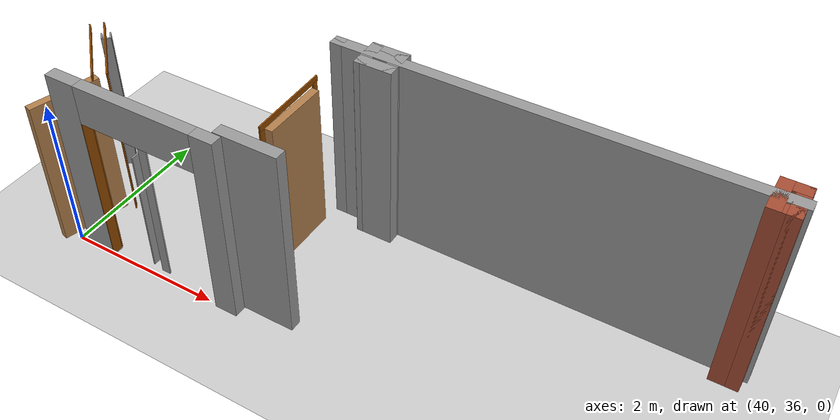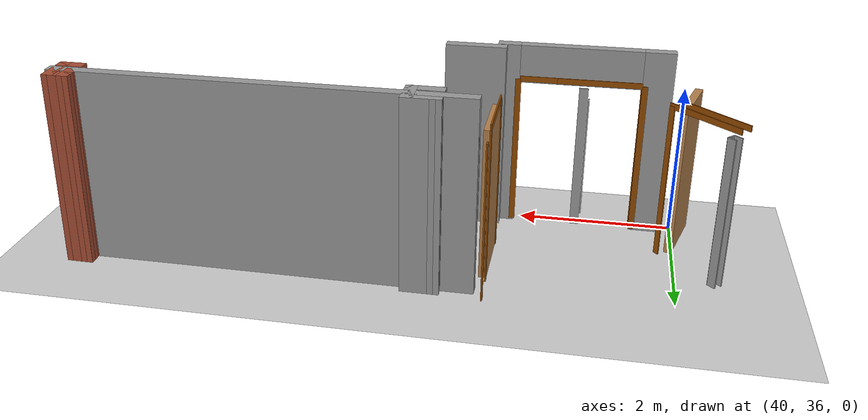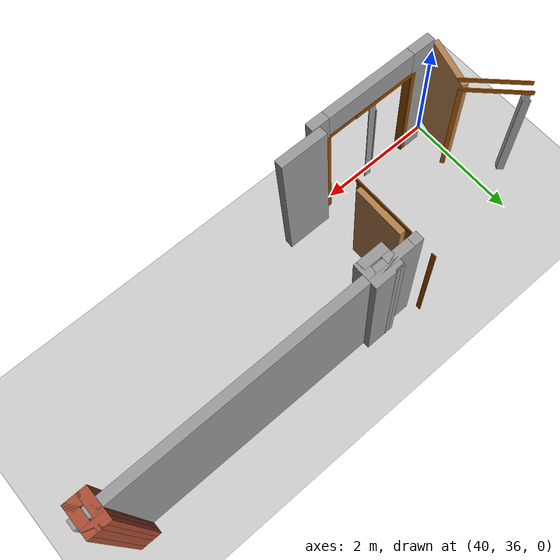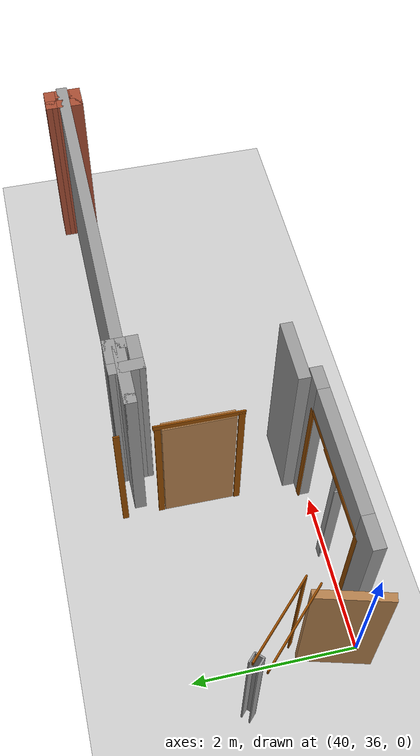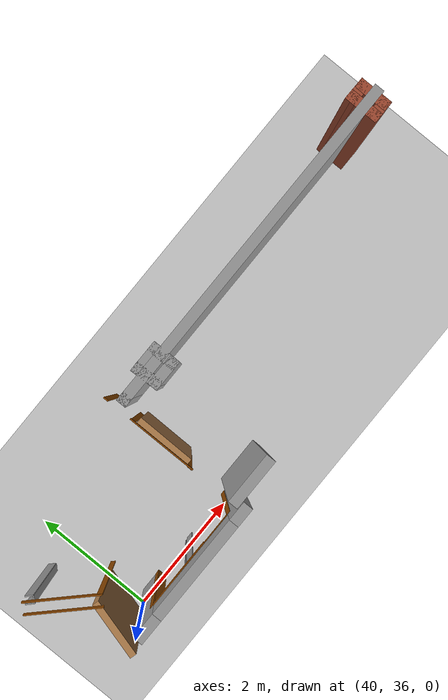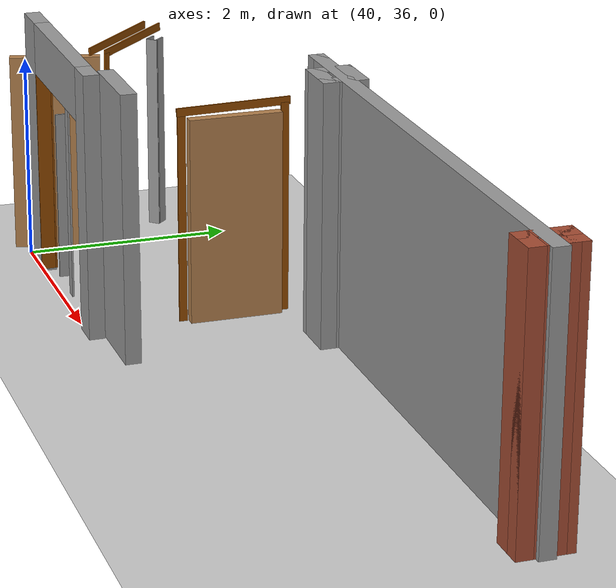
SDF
<sdf version="1.6">
 <world name="default">
  <model name="ground_plane">
   <static>1</static>
   <link name="link">
    <collision name="collision">
     <geometry><plane><normal>0 0 1</normal><size>100 100</size></plane></geometry>
     <surface><friction><ode><mu>100</mu><mu2>50</mu2></ode></friction></surface>
    </collision>
    <visual name="visual">
     <cast_shadows>0</cast_shadows>
     <geometry><plane><normal>0 0 1</normal><size>100 100</size></plane></geometry>
     <material>
      <script><uri>file://media/materials/scripts/gazebo.material</uri><name>Gazebo/Grey</name></script>
     </material>
    </visual>
   </link>
  </model>
  <model name="CVSSP">
   <pose>23.8714 24.094 0 0 -0 0</pose>
   <link name="Wall_228">
    <pose>17.4069 11.9566 0 0 -0 0</pose>
    <visual name="Wall_228_Visual_0">
     <pose>-0.929285 0 1.25 0 -0 0</pose>
     <geometry><box><size>0.391429 0.15 2.5</size></box></geometry>
     <material>
      <script><uri>file://media/materials/scripts/gazebo.material</uri><name>Gazebo/Grey</name></script>
      <ambient>0.588235 0.588235 0.588235 1</ambient>
     </material>
    </visual>
    <collision name="Wall_228_Collision_0">
     <geometry><box><size>0.391429 0.15 2.5</size></box></geometry>
     <pose>-0.929285 0 1.25 0 -0 0</pose>
    </collision>
    <visual name="Wall_228_Visual_1">
     <pose>0.97634 0 1.25 0 -0 0</pose>
     <geometry><box><size>0.297321 0.15 2.5</size></box></geometry>
     <material>
      <script><uri>file://media/materials/scripts/gazebo.material</uri><name>Gazebo/Grey</name></script>
      <ambient>0.588235 0.588235 0.588235 1</ambient>
     </material>
    </visual>
    <collision name="Wall_228_Collision_1">
     <geometry><box><size>0.297321 0.15 2.5</size></box></geometry>
     <pose>0.97634 0 1.25 0 -0 0</pose>
    </collision>
    <visual name="Wall_228_Visual_2">
     <pose>0.047054 0 2.25 0 -0 0</pose>
     <geometry><box><size>1.56125 0.15 0.5</size></box></geometry>
     <material>
      <script><uri>file://media/materials/scripts/gazebo.material</uri><name>Gazebo/Grey</name></script>
      <ambient>0.588235 0.588235 0.588235 1</ambient>
     </material>
    </visual>
    <collision name="Wall_228_Collision_2">
     <geometry><box><size>1.56125 0.15 0.5</size></box></geometry>
     <pose>0.047054 0 2.25 0 -0 0</pose>
    </collision>
   </link>
   <link name="Wall_233">
    <collision name="Wall_233_Collision">
     <geometry><box><size>0.784783 0.15 2.5</size></box></geometry>
     <pose>0 0 1.25 0 -0 0</pose>
    </collision>
    <visual name="Wall_233_Visual">
     <pose>0 0 1.25 0 -0 0</pose>
     <geometry><box><size>0.784783 0.15 2.5</size></box></geometry>
     <material>
      <script><uri>file://media/materials/scripts/gazebo.material</uri><name>Gazebo/Grey</name></script>
      <ambient>1 1 1 1</ambient>
     </material>
    </visual>
    <pose>18.7997 12.116 0 0 -0 3.14159</pose>
   </link>
   <link name="Wall_533">
    <collision name="Wall_533_Collision">
     <geometry><box><size>5.25 0.15 2.5</size></box></geometry>
     <pose>0 0 1.25 0 -0 0</pose>
    </collision>
    <visual name="Wall_533_Visual">
     <pose>0 0 1.25 0 -0 0</pose>
     <geometry><box><size>5.25 0.15 2.5</size></box></geometry>
     <material>
      <script><uri>file://media/materials/scripts/gazebo.material</uri><name>Gazebo/Grey</name></script>
      <ambient>0.588235 0.588235 0.588235 1</ambient>
     </material>
    </visual>
    <pose>21.1286 14.0544 0 0 -0 3.14159</pose>
   </link>
   <link name="Wall_534">
    <collision name="Wall_534_Collision">
     <geometry><box><size>0.15 0.15 2.5</size></box></geometry>
     <pose>0 0 1.25 0 -0 0</pose>
    </collision>
    <visual name="Wall_534_Visual">
     <pose>0 0 1.25 0 -0 0</pose>
     <geometry><box><size>0.15 0.15 2.5</size></box></geometry>
     <material>
      <script><uri>file://media/materials/scripts/gazebo.material</uri><name>Gazebo/Grey</name></script>
      <ambient>1 1 1 1</ambient>
     </material>
    </visual>
    <pose>18.5786 14.0544 0 0 -0 0</pose>
   </link>
   <link name="Wall_535">
    <collision name="Wall_535_Collision">
     <geometry><box><size>0.15 0.15 2.5</size></box></geometry>
     <pose>0 0 1.25 0 -0 0</pose>
    </collision>
    <visual name="Wall_535_Visual">
     <pose>0 0 1.25 0 -0 0</pose>
     <geometry><box><size>0.15 0.15 2.5</size></box></geometry>
     <material>
      <script><uri>file://media/materials/scripts/gazebo.material</uri><name>Gazebo/Grey</name></script>
      <ambient>1 1 1 1</ambient>
     </material>
    </visual>
    <pose>18.5786 14.0544 0 0 -0 0</pose>
   </link>
   <link name="Wall_673">
    <collision name="Wall_673_Collision">
     <geometry><box><size>0.486902 0.15 2.5</size></box></geometry>
     <pose>0 0 1.25 0 -0 0</pose>
    </collision>
    <visual name="Wall_673_Visual">
     <pose>0 0 1.25 0 -0 0</pose>
     <geometry><box><size>0.486902 0.15 2.5</size></box></geometry>
     <material>
      <script><uri>file://media/materials/scripts/gazebo.material</uri><name>Gazebo/Grey</name></script>
      <ambient>1 1 1 1</ambient>
     </material>
    </visual>
    <pose>19.1589 14.1574 0 0 -0 0</pose>
   </link>
   <link name="Wall_674">
    <collision name="Wall_674_Collision">
     <geometry><box><size>0.426562 0.15 2.5</size></box></geometry>
     <pose>0 0 1.25 0 -0 0</pose>
    </collision>
    <visual name="Wall_674_Visual">
     <pose>0 0 1.25 0 -0 0</pose>
     <geometry><box><size>0.426562 0.15 2.5</size></box></geometry>
     <material>
      <script><uri>file://media/materials/scripts/gazebo.material</uri><name>Gazebo/Grey</name></script>
      <ambient>1 1 1 1</ambient>
     </material>
    </visual>
    <pose>19.3273 14.0191 0 0 0 -1.5708</pose>
   </link>
   <link name="Wall_675">
    <collision name="Wall_675_Collision">
     <geometry><box><size>0.476846 0.15 2.5</size></box></geometry>
     <pose>0 0 1.25 0 -0 0</pose>
    </collision>
    <visual name="Wall_675_Visual">
     <pose>0 0 1.25 0 -0 0</pose>
     <geometry><box><size>0.476846 0.15 2.5</size></box></geometry>
     <material>
      <script><uri>file://media/materials/scripts/gazebo.material</uri><name>Gazebo/Grey</name></script>
      <ambient>1 1 1 1</ambient>
     </material>
    </visual>
    <pose>19.1639 13.8808 0 0 -0 3.14159</pose>
   </link>
   <link name="Wall_676">
    <collision name="Wall_676_Collision">
     <geometry><box><size>0.426744 0.15 2.5</size></box></geometry>
     <pose>0 0 1.25 0 -0 0</pose>
    </collision>
    <visual name="Wall_676_Visual">
     <pose>0 0 1.25 0 -0 0</pose>
     <geometry><box><size>0.426744 0.15 2.5</size></box></geometry>
     <material>
      <script><uri>file://media/materials/scripts/gazebo.material</uri><name>Gazebo/Grey</name></script>
      <ambient>1 1 1 1</ambient>
     </material>
    </visual>
    <pose>18.9954 14.0191 0 0 -0 1.60714</pose>
   </link>
   <link name="Wall_678">
    <collision name="Wall_678_Collision">
     <geometry><box><size>0.341089 0.15 2.5</size></box></geometry>
     <pose>0 0 1.25 0 -0 0</pose>
    </collision>
    <visual name="Wall_678_Visual">
     <pose>0 0 1.25 0 -0 0</pose>
     <geometry><box><size>0.341089 0.15 2.5</size></box></geometry>
     <material>
      <script><uri>file://media/materials/scripts/gazebo.material</uri><name>Gazebo/Bricks</name></script>
      <ambient>1 1 1 1</ambient>
     </material>
    </visual>
    <pose>23.5361 14.2369 0 0 -0 3.13119</pose>
   </link>
   <link name="Wall_679">
    <collision name="Wall_679_Collision">
     <geometry><box><size>0.501988 0.15 2.5</size></box></geometry>
     <pose>0 0 1.25 0 -0 0</pose>
    </collision>
    <visual name="Wall_679_Visual">
     <pose>0 0 1.25 0 -0 0</pose>
     <geometry><box><size>0.501988 0.15 2.5</size></box></geometry>
     <material>
      <script><uri>file://media/materials/scripts/gazebo.material</uri><name>Gazebo/Bricks</name></script>
      <ambient>1 1 1 1</ambient>
     </material>
    </visual>
    <pose>23.4405 14.0619 0 0 0 -1.5708</pose>
   </link>
   <link name="Wall_680">
    <collision name="Wall_680_Collision">
     <geometry><box><size>0.341145 0.15 2.5</size></box></geometry>
     <pose>0 0 1.25 0 -0 0</pose>
    </collision>
    <visual name="Wall_680_Visual">
     <pose>0 0 1.25 0 -0 0</pose>
     <geometry><box><size>0.341145 0.15 2.5</size></box></geometry>
     <material>
      <script><uri>file://media/materials/scripts/gazebo.material</uri><name>Gazebo/Bricks</name></script>
      <ambient>1 1 1 1</ambient>
     </material>
    </visual>
    <pose>23.5361 13.8859 0 0 -0 0</pose>
   </link>
   <link name="Wall_681">
    <collision name="Wall_681_Collision">
     <geometry><box><size>0.5 0.15 2.5</size></box></geometry>
     <pose>0 0 1.25 0 -0 0</pose>
    </collision>
    <visual name="Wall_681_Visual">
     <pose>0 0 1.25 0 -0 0</pose>
     <geometry><box><size>0.5 0.15 2.5</size></box></geometry>
     <material>
      <script><uri>file://media/materials/scripts/gazebo.material</uri><name>Gazebo/Bricks</name></script>
      <ambient>1 1 1 1</ambient>
     </material>
    </visual>
    <pose>23.6316 14.0609 0 0 -0 1.5708</pose>
   </link>
   <static>1</static>
  </model>
  <model name="basic_ply_door_corrected_clone_0_clone">
   <link name="link">
    <pose>-0 0 1.00385 0 -0 0</pose>
    <inertial>
     <mass>0.5167</mass>
     <inertia>
      <ixx>0.00086117</ixx>
      <ixy>0</ixy>
      <ixz>0</ixz>
      <iyy>0.00086117</iyy>
      <iyz>0</iyz>
      <izz>0.00086117</izz>
     </inertia>
    </inertial>
    <gravity>0</gravity>
    <visual name="visual">
     <geometry><box><size>0.88 0.1 1.96</size></box></geometry>
     <material>
      <script><uri>file://media/materials/scripts/gazebo.material</uri><name>Gazebo/Wood</name></script>
      <shader type="pixel"><normal_map>__default__</normal_map></shader>
      <ambient>1 1 1 1</ambient>
      <diffuse>1 1 1 1</diffuse>
      <specular>0.2 0.2 0.2 1</specular>
      <emissive>0 0 0 1</emissive>
     </material>
    </visual>
    <collision name="collision">
     <geometry><box><size>0.88 0.1 1.96</size></box></geometry>
     <surface>
      <friction>
       <ode><mu>1</mu><mu2>1</mu2><fdir1>0 0 0</fdir1><slip1>0</slip1><slip2>0</slip2></ode>
       <torsional>
        <coefficient>1</coefficient>
        <patch_radius>0</patch_radius>
        <surface_radius>0.01</surface_radius>
        <use_patch_radius>0</use_patch_radius>
        <ode><slip>0</slip></ode>
       </torsional>
      </friction>
      <bounce><restitution_coefficient>0</restitution_coefficient><threshold>1e+06</threshold></bounce>
      <contact>
       <collide_without_contact>0</collide_without_contact>
       <collide_without_contact_bitmask>1</collide_without_contact_bitmask>
       <collide_bitmask>1</collide_bitmask>
       <ode>
        <soft_cfm>0</soft_cfm>
        <soft_erp>0.2</soft_erp>
        <kp>100000</kp>
        <kd>100</kd>
        <max_vel>100</max_vel>
        <min_depth>0.001</min_depth>
       </ode>
       <bullet>
        <split_impulse>1</split_impulse>
        <split_impulse_penetration_threshold>-0.01</split_impulse_penetration_threshold>
        <soft_cfm>0</soft_cfm>
        <soft_erp>0.2</soft_erp>
        <kp>100000</kp>
        <kd>100</kd>
       </bullet>
      </contact>
     </surface>
    </collision>
   </link>
   <static>1</static>
   <pose>42.3144 37.3998 -0.00101 0 -0 1.56379</pose>
  </model>
  <model name="metal_hinge">
   <link name="link">
    <inertial>
     <mass>1</mass>
     <inertia>
      <ixx>0.166667</ixx>
      <ixy>0</ixy>
      <ixz>0</ixz>
      <iyy>0.166667</iyy>
      <iyz>0</iyz>
      <izz>0.166667</izz>
     </inertia>
    </inertial>
    <visual name="visual">
     <geometry><box><size>0.018685 0.118108 1.60983</size></box></geometry>
     <material>
      <script><name>Gazebo/Grey</name><uri>file://media/materials/scripts/gazebo.material</uri></script>
      <shader type="pixel"/>
     </material>
    </visual>
    <collision name="collision">
     <geometry><box><size>0.018685 0.118108 1.60983</size></box></geometry>
     <surface>
      <friction>
       <ode><mu>1</mu><mu2>1</mu2><fdir1>0 0 0</fdir1><slip1>0</slip1><slip2>0</slip2></ode>
       <torsional>
        <coefficient>1</coefficient>
        <patch_radius>0</patch_radius>
        <surface_radius>0</surface_radius>
        <use_patch_radius>1</use_patch_radius>
        <ode><slip>0</slip></ode>
       </torsional>
      </friction>
      <bounce><restitution_coefficient>0</restitution_coefficient><threshold>1e+06</threshold></bounce>
      <contact>
       <collide_without_contact>0</collide_without_contact>
       <collide_without_contact_bitmask>1</collide_without_contact_bitmask>
       <collide_bitmask>1</collide_bitmask>
       <ode>
        <soft_cfm>0</soft_cfm>
        <soft_erp>0.2</soft_erp>
        <kp>1e+13</kp>
        <kd>1</kd>
        <max_vel>0.01</max_vel>
        <min_depth>0</min_depth>
       </ode>
       <bullet>
        <split_impulse>1</split_impulse>
        <split_impulse_penetration_threshold>-0.01</split_impulse_penetration_threshold>
        <soft_cfm>0</soft_cfm>
        <soft_erp>0.2</soft_erp>
        <kp>1e+13</kp>
        <kd>1</kd>
       </bullet>
      </contact>
     </surface>
    </collision>
   </link>
   <static>1</static>
   <pose>41.1991 36.0596 0.984523 0 -0 0</pose>
  </model>
  <model name="basic_ply_door_corrected_clone_0_clone_clone_1_clone">
   <link name="link">
    <pose>-0 0 1.00385 0 -0 0</pose>
    <inertial>
     <mass>0.5167</mass>
     <inertia>
      <ixx>0.00086117</ixx>
      <ixy>0</ixy>
      <ixz>0</ixz>
      <iyy>0.00086117</iyy>
      <iyz>0</iyz>
      <izz>0.00086117</izz>
     </inertia>
    </inertial>
    <gravity>0</gravity>
    <visual name="visual">
     <geometry><box><size>0.88 0.1 1.96</size></box></geometry>
     <material>
      <script><uri>file://media/materials/scripts/gazebo.material</uri><name>Gazebo/Wood</name></script>
      <shader type="pixel"><normal_map>__default__</normal_map></shader>
      <ambient>1 1 1 1</ambient>
      <diffuse>1 1 1 1</diffuse>
      <specular>0.2 0.2 0.2 1</specular>
      <emissive>0 0 0 1</emissive>
     </material>
    </visual>
    <collision name="collision">
     <geometry><box><size>0.88 0.1 1.96</size></box></geometry>
     <surface>
      <friction>
       <ode><mu>1</mu><mu2>1</mu2><fdir1>0 0 0</fdir1><slip1>0</slip1><slip2>0</slip2></ode>
       <torsional>
        <coefficient>1</coefficient>
        <patch_radius>0</patch_radius>
        <surface_radius>0.01</surface_radius>
        <use_patch_radius>0</use_patch_radius>
        <ode><slip>0</slip></ode>
       </torsional>
      </friction>
      <bounce><restitution_coefficient>0</restitution_coefficient><threshold>1e+06</threshold></bounce>
      <contact>
       <collide_without_contact>0</collide_without_contact>
       <collide_without_contact_bitmask>1</collide_without_contact_bitmask>
       <collide_bitmask>1</collide_bitmask>
       <ode>
        <soft_cfm>0</soft_cfm>
        <soft_erp>0.2</soft_erp>
        <kp>100000</kp>
        <kd>100</kd>
        <max_vel>100</max_vel>
        <min_depth>0.001</min_depth>
       </ode>
       <bullet>
        <split_impulse>1</split_impulse>
        <split_impulse_penetration_threshold>-0.01</split_impulse_penetration_threshold>
        <soft_cfm>0</soft_cfm>
        <soft_erp>0.2</soft_erp>
        <kp>100000</kp>
        <kd>100</kd>
       </bullet>
      </contact>
     </surface>
    </collision>
   </link>
   <static>1</static>
   <pose>39.9328 36.3122 -0.00101 0 0 -1.83483</pose>
  </model>
  <model name="metal_hinge_clone_0">
   <link name="link">
    <inertial>
     <mass>1</mass>
     <inertia>
      <ixx>0.166667</ixx>
      <ixy>0</ixy>
      <ixz>0</ixz>
      <iyy>0.166667</iyy>
      <iyz>0</iyz>
      <izz>0.166667</izz>
     </inertia>
    </inertial>
    <visual name="visual">
     <geometry><box><size>0.018685 0.118108 1.95261</size></box></geometry>
     <material>
      <script><name>Gazebo/Grey</name><uri>file://media/materials/scripts/gazebo.material</uri></script>
      <shader type="pixel"/>
     </material>
    </visual>
    <collision name="collision">
     <geometry><box><size>0.018685 0.118108 1.95261</size></box></geometry>
     <surface>
      <friction>
       <ode><mu>1</mu><mu2>1</mu2><fdir1>0 0 0</fdir1><slip1>0</slip1><slip2>0</slip2></ode>
       <torsional>
        <coefficient>1</coefficient>
        <patch_radius>0</patch_radius>
        <surface_radius>0</surface_radius>
        <use_patch_radius>1</use_patch_radius>
        <ode><slip>0</slip></ode>
       </torsional>
      </friction>
      <bounce><restitution_coefficient>0</restitution_coefficient><threshold>1e+06</threshold></bounce>
      <contact>
       <collide_without_contact>0</collide_without_contact>
       <collide_without_contact_bitmask>1</collide_without_contact_bitmask>
       <collide_bitmask>1</collide_bitmask>
       <ode>
        <soft_cfm>0</soft_cfm>
        <soft_erp>0.2</soft_erp>
        <kp>1e+13</kp>
        <kd>1</kd>
        <max_vel>0.01</max_vel>
        <min_depth>0</min_depth>
       </ode>
       <bullet>
        <split_impulse>1</split_impulse>
        <split_impulse_penetration_threshold>-0.01</split_impulse_penetration_threshold>
        <soft_cfm>0</soft_cfm>
        <soft_erp>0.2</soft_erp>
        <kp>1e+13</kp>
        <kd>1</kd>
       </bullet>
      </contact>
     </surface>
    </collision>
   </link>
   <static>1</static>
   <pose>39.5542 37.4047 0.981251 0 0 -0.77044</pose>
  </model>
  <model name="metal_hinge_clone_1">
   <link name="link">
    <inertial>
     <mass>1</mass>
     <inertia>
      <ixx>0.166667</ixx>
      <ixy>0</ixy>
      <ixz>0</ixz>
      <iyy>0.166667</iyy>
      <iyz>0</iyz>
      <izz>0.166667</izz>
     </inertia>
    </inertial>
    <visual name="visual">
     <geometry><box><size>0.018685 0.118108 1.95261</size></box></geometry>
     <material>
      <script><name>Gazebo/Grey</name><uri>file://media/materials/scripts/gazebo.material</uri></script>
      <shader type="pixel"/>
     </material>
    </visual>
    <collision name="collision">
     <geometry><box><size>0.018685 0.118108 1.95261</size></box></geometry>
     <surface>
      <friction>
       <ode><mu>1</mu><mu2>1</mu2><fdir1>0 0 0</fdir1><slip1>0</slip1><slip2>0</slip2></ode>
       <torsional>
        <coefficient>1</coefficient>
        <patch_radius>0</patch_radius>
        <surface_radius>0</surface_radius>
        <use_patch_radius>1</use_patch_radius>
        <ode><slip>0</slip></ode>
       </torsional>
      </friction>
      <bounce><restitution_coefficient>0</restitution_coefficient><threshold>1e+06</threshold></bounce>
      <contact>
       <collide_without_contact>0</collide_without_contact>
       <collide_without_contact_bitmask>1</collide_without_contact_bitmask>
       <collide_bitmask>1</collide_bitmask>
       <ode>
        <soft_cfm>0</soft_cfm>
        <soft_erp>0.2</soft_erp>
        <kp>1e+13</kp>
        <kd>1</kd>
        <max_vel>0.01</max_vel>
        <min_depth>0</min_depth>
       </ode>
       <bullet>
        <split_impulse>1</split_impulse>
        <split_impulse_penetration_threshold>-0.01</split_impulse_penetration_threshold>
        <soft_cfm>0</soft_cfm>
        <soft_erp>0.2</soft_erp>
        <kp>1e+13</kp>
        <kd>1</kd>
       </bullet>
      </contact>
     </surface>
    </collision>
   </link>
   <static>1</static>
   <pose>39.5516 37.4866 0.984523 0 -0 0.79018</pose>
  </model>
  <model name="metal_hinge_clone_1_clone">
   <link name="link">
    <inertial>
     <mass>1</mass>
     <inertia>
      <ixx>0.166667</ixx>
      <ixy>0</ixy>
      <ixz>0</ixz>
      <iyy>0.166667</iyy>
      <iyz>0</iyz>
      <izz>0.166667</izz>
     </inertia>
    </inertial>
    <visual name="visual">
     <geometry><box><size>0.018685 0.118108 1.95261</size></box></geometry>
     <material>
      <script><name>Gazebo/Grey</name><uri>file://media/materials/scripts/gazebo.material</uri></script>
      <shader type="pixel"/>
     </material>
    </visual>
    <collision name="collision">
     <geometry><box><size>0.018685 0.118108 1.95261</size></box></geometry>
     <surface>
      <friction>
       <ode><mu>1</mu><mu2>1</mu2><fdir1>0 0 0</fdir1><slip1>0</slip1><slip2>0</slip2></ode>
       <torsional>
        <coefficient>1</coefficient>
        <patch_radius>0</patch_radius>
        <surface_radius>0</surface_radius>
        <use_patch_radius>1</use_patch_radius>
        <ode><slip>0</slip></ode>
       </torsional>
      </friction>
      <bounce><restitution_coefficient>0</restitution_coefficient><threshold>1e+06</threshold></bounce>
      <contact>
       <collide_without_contact>0</collide_without_contact>
       <collide_without_contact_bitmask>1</collide_without_contact_bitmask>
       <collide_bitmask>1</collide_bitmask>
       <ode>
        <soft_cfm>0</soft_cfm>
        <soft_erp>0.2</soft_erp>
        <kp>1e+13</kp>
        <kd>1</kd>
        <max_vel>0.01</max_vel>
        <min_depth>0</min_depth>
       </ode>
       <bullet>
        <split_impulse>1</split_impulse>
        <split_impulse_penetration_threshold>-0.01</split_impulse_penetration_threshold>
        <soft_cfm>0</soft_cfm>
        <soft_erp>0.2</soft_erp>
        <kp>1e+13</kp>
        <kd>1</kd>
       </bullet>
      </contact>
     </surface>
    </collision>
   </link>
   <static>1</static>
   <pose>39.4723 37.4144 0.984523 0 -0 0.79018</pose>
  </model>
  <model name="metal_hinge_clone_2">
   <link name="link">
    <inertial>
     <mass>1</mass>
     <inertia>
      <ixx>0.166667</ixx>
      <ixy>0</ixy>
      <ixz>0</ixz>
      <iyy>0.166667</iyy>
      <iyz>0</iyz>
      <izz>0.166667</izz>
     </inertia>
    </inertial>
    <visual name="visual">
     <geometry><box><size>0.018685 0.118108 1.95261</size></box></geometry>
     <material>
      <script><name>Gazebo/Grey</name><uri>file://media/materials/scripts/gazebo.material</uri></script>
      <shader type="pixel"/>
     </material>
    </visual>
    <collision name="collision">
     <geometry><box><size>0.018685 0.118108 1.95261</size></box></geometry>
     <surface>
      <friction>
       <ode><mu>1</mu><mu2>1</mu2><fdir1>0 0 0</fdir1><slip1>0</slip1><slip2>0</slip2></ode>
       <torsional>
        <coefficient>1</coefficient>
        <patch_radius>0</patch_radius>
        <surface_radius>0</surface_radius>
        <use_patch_radius>1</use_patch_radius>
        <ode><slip>0</slip></ode>
       </torsional>
      </friction>
      <bounce><restitution_coefficient>0</restitution_coefficient><threshold>1e+06</threshold></bounce>
      <contact>
       <collide_without_contact>0</collide_without_contact>
       <collide_without_contact_bitmask>1</collide_without_contact_bitmask>
       <collide_bitmask>1</collide_bitmask>
       <ode>
        <soft_cfm>0</soft_cfm>
        <soft_erp>0.2</soft_erp>
        <kp>1e+13</kp>
        <kd>1</kd>
        <max_vel>0.01</max_vel>
        <min_depth>0</min_depth>
       </ode>
       <bullet>
        <split_impulse>1</split_impulse>
        <split_impulse_penetration_threshold>-0.01</split_impulse_penetration_threshold>
        <soft_cfm>0</soft_cfm>
        <soft_erp>0.2</soft_erp>
        <kp>1e+13</kp>
        <kd>1</kd>
       </bullet>
      </contact>
     </surface>
    </collision>
   </link>
   <static>1</static>
   <pose>41.2718 36.0987 0.984523 0 0 -1.58649</pose>
  </model>
  <model name="oak_frame_0_clone_clone_7">
   <link name="link">
    <inertial>
     <mass>1</mass>
     <inertia>
      <ixx>0.166667</ixx>
      <ixy>0</ixy>
      <ixz>0</ixz>
      <iyy>0.166667</iyy>
      <iyz>0</iyz>
      <izz>0.166667</izz>
     </inertia>
    </inertial>
    <visual name="visual">
     <geometry><box><size>0.018685 0.076446 2.026</size></box></geometry>
     <material>
      <script><name>Gazebo/Grey</name><uri>file://media/materials/scripts/gazebo.material</uri></script>
      <shader type="pixel"><normal_map>__default__</normal_map></shader>
      <diffuse>0.58 0.29 0 0</diffuse>
      <ambient>0.58 0.29 0 1</ambient>
      <specular>0.01 0.01 0.01 1</specular>
      <emissive>0 0 0 1</emissive>
     </material>
    </visual>
    <collision name="collision">
     <geometry><box><size>0.018685 0.076446 2.026</size></box></geometry>
     <surface>
      <friction>
       <ode><mu>1</mu><mu2>1</mu2><fdir1>0 0 0</fdir1><slip1>0</slip1><slip2>0</slip2></ode>
       <torsional>
        <coefficient>1</coefficient>
        <patch_radius>0</patch_radius>
        <surface_radius>0</surface_radius>
        <use_patch_radius>1</use_patch_radius>
        <ode><slip>0</slip></ode>
       </torsional>
      </friction>
      <bounce><restitution_coefficient>0</restitution_coefficient><threshold>1e+06</threshold></bounce>
      <contact>
       <collide_without_contact>0</collide_without_contact>
       <collide_without_contact_bitmask>1</collide_without_contact_bitmask>
       <collide_bitmask>1</collide_bitmask>
       <ode>
        <soft_cfm>0</soft_cfm>
        <soft_erp>0.2</soft_erp>
        <kp>1e+13</kp>
        <kd>1</kd>
        <max_vel>0.01</max_vel>
        <min_depth>0</min_depth>
       </ode>
       <bullet>
        <split_impulse>1</split_impulse>
        <split_impulse_penetration_threshold>-0.01</split_impulse_penetration_threshold>
        <soft_cfm>0</soft_cfm>
        <soft_erp>0.2</soft_erp>
        <kp>1e+13</kp>
        <kd>1</kd>
       </bullet>
      </contact>
     </surface>
    </collision>
   </link>
   <static>1</static>
   <pose>42.261 36.9101 1.03242 0 -0 0</pose>
  </model>
  <model name="oak_frame_0_clone_clone_8">
   <link name="link">
    <inertial>
     <mass>1</mass>
     <inertia>
      <ixx>0.166667</ixx>
      <ixy>0</ixy>
      <ixz>0</ixz>
      <iyy>0.166667</iyy>
      <iyz>0</iyz>
      <izz>0.166667</izz>
     </inertia>
    </inertial>
    <visual name="visual">
     <geometry><box><size>0.018685 0.076446 2.026</size></box></geometry>
     <material>
      <script><name>Gazebo/Grey</name><uri>file://media/materials/scripts/gazebo.material</uri></script>
      <shader type="pixel"><normal_map>__default__</normal_map></shader>
      <diffuse>0.58 0.29 0 0</diffuse>
      <ambient>0.58 0.29 0 1</ambient>
      <specular>0.01 0.01 0.01 1</specular>
      <emissive>0 0 0 1</emissive>
     </material>
    </visual>
    <collision name="collision">
     <geometry><box><size>0.018685 0.076446 2.026</size></box></geometry>
     <surface>
      <friction>
       <ode><mu>1</mu><mu2>1</mu2><fdir1>0 0 0</fdir1><slip1>0</slip1><slip2>0</slip2></ode>
       <torsional>
        <coefficient>1</coefficient>
        <patch_radius>0</patch_radius>
        <surface_radius>0</surface_radius>
        <use_patch_radius>1</use_patch_radius>
        <ode><slip>0</slip></ode>
       </torsional>
      </friction>
      <bounce><restitution_coefficient>0</restitution_coefficient><threshold>1e+06</threshold></bounce>
      <contact>
       <collide_without_contact>0</collide_without_contact>
       <collide_without_contact_bitmask>1</collide_without_contact_bitmask>
       <collide_bitmask>1</collide_bitmask>
       <ode>
        <soft_cfm>0</soft_cfm>
        <soft_erp>0.2</soft_erp>
        <kp>1e+13</kp>
        <kd>1</kd>
        <max_vel>0.01</max_vel>
        <min_depth>0</min_depth>
       </ode>
       <bullet>
        <split_impulse>1</split_impulse>
        <split_impulse_penetration_threshold>-0.01</split_impulse_penetration_threshold>
        <soft_cfm>0</soft_cfm>
        <soft_erp>0.2</soft_erp>
        <kp>1e+13</kp>
        <kd>1</kd>
       </bullet>
      </contact>
     </surface>
    </collision>
   </link>
   <static>1</static>
   <pose>42.2734 37.8904 1.03242 0 -0 0</pose>
  </model>
  <model name="oak_frame_0_clone_clone_9">
   <link name="link">
    <inertial>
     <mass>1</mass>
     <inertia>
      <ixx>0.166667</ixx>
      <ixy>0</ixy>
      <ixz>0</ixz>
      <iyy>0.166667</iyy>
      <iyz>0</iyz>
      <izz>0.166667</izz>
     </inertia>
    </inertial>
    <visual name="visual">
     <geometry><box><size>0.018685 0.076446 2.026</size></box></geometry>
     <material>
      <script><name>Gazebo/Grey</name><uri>file://media/materials/scripts/gazebo.material</uri></script>
      <shader type="pixel"><normal_map>__default__</normal_map></shader>
      <diffuse>0.58 0.29 0 0</diffuse>
      <ambient>0.58 0.29 0 1</ambient>
      <specular>0.01 0.01 0.01 1</specular>
      <emissive>0 0 0 1</emissive>
     </material>
    </visual>
    <collision name="collision">
     <geometry><box><size>0.018685 0.076446 2.026</size></box></geometry>
     <surface>
      <friction>
       <ode><mu>1</mu><mu2>1</mu2><fdir1>0 0 0</fdir1><slip1>0</slip1><slip2>0</slip2></ode>
       <torsional>
        <coefficient>1</coefficient>
        <patch_radius>0</patch_radius>
        <surface_radius>0</surface_radius>
        <use_patch_radius>1</use_patch_radius>
        <ode><slip>0</slip></ode>
       </torsional>
      </friction>
      <bounce><restitution_coefficient>0</restitution_coefficient><threshold>1e+06</threshold></bounce>
      <contact>
       <collide_without_contact>0</collide_without_contact>
       <collide_without_contact_bitmask>1</collide_without_contact_bitmask>
       <collide_bitmask>1</collide_bitmask>
       <ode>
        <soft_cfm>0</soft_cfm>
        <soft_erp>0.2</soft_erp>
        <kp>1e+13</kp>
        <kd>1</kd>
        <max_vel>0.01</max_vel>
        <min_depth>0</min_depth>
       </ode>
       <bullet>
        <split_impulse>1</split_impulse>
        <split_impulse_penetration_threshold>-0.01</split_impulse_penetration_threshold>
        <soft_cfm>0</soft_cfm>
        <soft_erp>0.2</soft_erp>
        <kp>1e+13</kp>
        <kd>1</kd>
       </bullet>
      </contact>
     </surface>
    </collision>
   </link>
   <static>1</static>
   <pose>42.2621 38.3606 1.03242 0 -0 0</pose>
  </model>
  <model name="oak_frame_0_clone_0_clone_6">
   <link name="link">
    <inertial>
     <mass>1</mass>
     <inertia>
      <ixx>0.166667</ixx>
      <ixy>0</ixy>
      <ixz>0</ixz>
      <iyy>0.166667</iyy>
      <iyz>0</iyz>
      <izz>0.166667</izz>
     </inertia>
    </inertial>
    <visual name="visual">
     <geometry><box><size>0.018685 0.076446 1.08038</size></box></geometry>
     <material>
      <script><name>Gazebo/Grey</name><uri>file://media/materials/scripts/gazebo.material</uri></script>
      <shader type="pixel"><normal_map>__default__</normal_map></shader>
      <diffuse>0.58 0.29 0 0</diffuse>
      <ambient>0.58 0.29 0 1</ambient>
      <specular>0.01 0.01 0.01 1</specular>
      <emissive>0 0 0 1</emissive>
     </material>
    </visual>
    <collision name="collision">
     <geometry><box><size>0.018685 0.076446 1.08038</size></box></geometry>
     <surface>
      <friction>
       <ode><mu>1</mu><mu2>1</mu2><fdir1>0 0 0</fdir1><slip1>0</slip1><slip2>0</slip2></ode>
       <torsional>
        <coefficient>1</coefficient>
        <patch_radius>0</patch_radius>
        <surface_radius>0</surface_radius>
        <use_patch_radius>1</use_patch_radius>
        <ode><slip>0</slip></ode>
       </torsional>
      </friction>
      <bounce><restitution_coefficient>0</restitution_coefficient><threshold>1e+06</threshold></bounce>
      <contact>
       <collide_without_contact>0</collide_without_contact>
       <collide_without_contact_bitmask>1</collide_without_contact_bitmask>
       <collide_bitmask>1</collide_bitmask>
       <ode>
        <soft_cfm>0</soft_cfm>
        <soft_erp>0.2</soft_erp>
        <kp>1e+13</kp>
        <kd>1</kd>
        <max_vel>0.01</max_vel>
        <min_depth>0</min_depth>
       </ode>
       <bullet>
        <split_impulse>1</split_impulse>
        <split_impulse_penetration_threshold>-0.01</split_impulse_penetration_threshold>
        <soft_cfm>0</soft_cfm>
        <soft_erp>0.2</soft_erp>
        <kp>1e+13</kp>
        <kd>1</kd>
       </bullet>
      </contact>
     </surface>
    </collision>
   </link>
   <static>1</static>
   <pose>42.2706 37.4023 2.05002 -1.55236 0 0</pose>
  </model>
  <model name="oak_frame_0_clone_0_clone_8">
   <link name="link">
    <inertial>
     <mass>1</mass>
     <inertia>
      <ixx>0.166667</ixx>
      <ixy>0</ixy>
      <ixz>0</ixz>
      <iyy>0.166667</iyy>
      <iyz>0</iyz>
      <izz>0.166667</izz>
     </inertia>
    </inertial>
    <visual name="visual">
     <geometry><box><size>0.018685 0.076446 1.08038</size></box></geometry>
     <material>
      <script><name>Gazebo/Grey</name><uri>file://media/materials/scripts/gazebo.material</uri></script>
      <shader type="pixel"><normal_map>__default__</normal_map></shader>
      <diffuse>0.58 0.29 0 0</diffuse>
      <ambient>0.58 0.29 0 1</ambient>
      <specular>0.01 0.01 0.01 1</specular>
      <emissive>0 0 0 1</emissive>
     </material>
    </visual>
    <collision name="collision">
     <geometry><box><size>0.018685 0.076446 1.08038</size></box></geometry>
     <surface>
      <friction>
       <ode><mu>1</mu><mu2>1</mu2><fdir1>0 0 0</fdir1><slip1>0</slip1><slip2>0</slip2></ode>
       <torsional>
        <coefficient>1</coefficient>
        <patch_radius>0</patch_radius>
        <surface_radius>0</surface_radius>
        <use_patch_radius>1</use_patch_radius>
        <ode><slip>0</slip></ode>
       </torsional>
      </friction>
      <bounce><restitution_coefficient>0</restitution_coefficient><threshold>1e+06</threshold></bounce>
      <contact>
       <collide_without_contact>0</collide_without_contact>
       <collide_without_contact_bitmask>1</collide_without_contact_bitmask>
       <collide_bitmask>1</collide_bitmask>
       <ode>
        <soft_cfm>0</soft_cfm>
        <soft_erp>0.2</soft_erp>
        <kp>1e+13</kp>
        <kd>1</kd>
        <max_vel>0.01</max_vel>
        <min_depth>0</min_depth>
       </ode>
       <bullet>
        <split_impulse>1</split_impulse>
        <split_impulse_penetration_threshold>-0.01</split_impulse_penetration_threshold>
        <soft_cfm>0</soft_cfm>
        <soft_erp>0.2</soft_erp>
        <kp>1e+13</kp>
        <kd>1</kd>
       </bullet>
      </contact>
     </surface>
    </collision>
   </link>
   <static>1</static>
   <pose>41.077 36.1293 2.05002 -1.57076 0.018436 -1.56859</pose>
  </model>
  <model name="oak_frame_0_clone_0_clone_8_clone">
   <link name="link">
    <inertial>
     <mass>1</mass>
     <inertia>
      <ixx>0.166667</ixx>
      <ixy>0</ixy>
      <ixz>0</ixz>
      <iyy>0.166667</iyy>
      <iyz>0</iyz>
      <izz>0.166667</izz>
     </inertia>
    </inertial>
    <visual name="visual">
     <geometry><box><size>0.018685 0.076446 1.08038</size></box></geometry>
     <material>
      <script><name>Gazebo/Grey</name><uri>file://media/materials/scripts/gazebo.material</uri></script>
      <shader type="pixel"><normal_map>__default__</normal_map></shader>
      <diffuse>0.58 0.29 0 0</diffuse>
      <ambient>0.58 0.29 0 1</ambient>
      <specular>0.01 0.01 0.01 1</specular>
      <emissive>0 0 0 1</emissive>
     </material>
    </visual>
    <collision name="collision">
     <geometry><box><size>0.018685 0.076446 1.08038</size></box></geometry>
     <surface>
      <friction>
       <ode><mu>1</mu><mu2>1</mu2><fdir1>0 0 0</fdir1><slip1>0</slip1><slip2>0</slip2></ode>
       <torsional>
        <coefficient>1</coefficient>
        <patch_radius>0</patch_radius>
        <surface_radius>0</surface_radius>
        <use_patch_radius>1</use_patch_radius>
        <ode><slip>0</slip></ode>
       </torsional>
      </friction>
      <bounce><restitution_coefficient>0</restitution_coefficient><threshold>1e+06</threshold></bounce>
      <contact>
       <collide_without_contact>0</collide_without_contact>
       <collide_without_contact_bitmask>1</collide_without_contact_bitmask>
       <collide_bitmask>1</collide_bitmask>
       <ode>
        <soft_cfm>0</soft_cfm>
        <soft_erp>0.2</soft_erp>
        <kp>1e+13</kp>
        <kd>1</kd>
        <max_vel>0.01</max_vel>
        <min_depth>0</min_depth>
       </ode>
       <bullet>
        <split_impulse>1</split_impulse>
        <split_impulse_penetration_threshold>-0.01</split_impulse_penetration_threshold>
        <soft_cfm>0</soft_cfm>
        <soft_erp>0.2</soft_erp>
        <kp>1e+13</kp>
        <kd>1</kd>
       </bullet>
      </contact>
     </surface>
    </collision>
   </link>
   <static>1</static>
   <pose>41.5564 36.1208 2.05002 -1.57076 0.018436 -1.56859</pose>
  </model>
  <model name="oak_frame_0_clone_clone_7_clone">
   <link name="link">
    <inertial>
     <mass>1</mass>
     <inertia>
      <ixx>0.166667</ixx>
      <ixy>0</ixy>
      <ixz>0</ixz>
      <iyy>0.166667</iyy>
      <iyz>0</iyz>
      <izz>0.166667</izz>
     </inertia>
    </inertial>
    <visual name="visual">
     <geometry><box><size>0.018685 0.076446 2.026</size></box></geometry>
     <material>
      <script><name>Gazebo/Grey</name><uri>file://media/materials/scripts/gazebo.material</uri></script>
      <shader type="pixel"><normal_map>__default__</normal_map></shader>
      <diffuse>0.58 0.29 0 0</diffuse>
      <ambient>0.58 0.29 0 1</ambient>
      <specular>0.01 0.01 0.01 1</specular>
      <emissive>0 0 0 1</emissive>
     </material>
    </visual>
    <collision name="collision">
     <geometry><box><size>0.018685 0.076446 2.026</size></box></geometry>
     <surface>
      <friction>
       <ode><mu>1</mu><mu2>1</mu2><fdir1>0 0 0</fdir1><slip1>0</slip1><slip2>0</slip2></ode>
       <torsional>
        <coefficient>1</coefficient>
        <patch_radius>0</patch_radius>
        <surface_radius>0</surface_radius>
        <use_patch_radius>1</use_patch_radius>
        <ode><slip>0</slip></ode>
       </torsional>
      </friction>
      <bounce><restitution_coefficient>0</restitution_coefficient><threshold>1e+06</threshold></bounce>
      <contact>
       <collide_without_contact>0</collide_without_contact>
       <collide_without_contact_bitmask>1</collide_without_contact_bitmask>
       <collide_bitmask>1</collide_bitmask>
       <ode>
        <soft_cfm>0</soft_cfm>
        <soft_erp>0.2</soft_erp>
        <kp>1e+13</kp>
        <kd>1</kd>
        <max_vel>0.01</max_vel>
        <min_depth>0</min_depth>
       </ode>
       <bullet>
        <split_impulse>1</split_impulse>
        <split_impulse_penetration_threshold>-0.01</split_impulse_penetration_threshold>
        <soft_cfm>0</soft_cfm>
        <soft_erp>0.2</soft_erp>
        <kp>1e+13</kp>
        <kd>1</kd>
       </bullet>
      </contact>
     </surface>
    </collision>
   </link>
   <static>1</static>
   <pose>40.5079 36.1246 1.03242 0 -0 1.64784</pose>
  </model>
  <model name="oak_frame_0_clone_clone_7_clone_clone">
   <link name="link">
    <inertial>
     <mass>1</mass>
     <inertia>
      <ixx>0.166667</ixx>
      <ixy>0</ixy>
      <ixz>0</ixz>
      <iyy>0.166667</iyy>
      <iyz>0</iyz>
      <izz>0.166667</izz>
     </inertia>
    </inertial>
    <visual name="visual">
     <geometry><box><size>0.018685 0.076446 2.026</size></box></geometry>
     <material>
      <script><name>Gazebo/Grey</name><uri>file://media/materials/scripts/gazebo.material</uri></script>
      <shader type="pixel"><normal_map>__default__</normal_map></shader>
      <diffuse>0.58 0.29 0 0</diffuse>
      <ambient>0.58 0.29 0 1</ambient>
      <specular>0.01 0.01 0.01 1</specular>
      <emissive>0 0 0 1</emissive>
     </material>
    </visual>
    <collision name="collision">
     <geometry><box><size>0.018685 0.076446 2.026</size></box></geometry>
     <surface>
      <friction>
       <ode><mu>1</mu><mu2>1</mu2><fdir1>0 0 0</fdir1><slip1>0</slip1><slip2>0</slip2></ode>
       <torsional>
        <coefficient>1</coefficient>
        <patch_radius>0</patch_radius>
        <surface_radius>0</surface_radius>
        <use_patch_radius>1</use_patch_radius>
        <ode><slip>0</slip></ode>
       </torsional>
      </friction>
      <bounce><restitution_coefficient>0</restitution_coefficient><threshold>1e+06</threshold></bounce>
      <contact>
       <collide_without_contact>0</collide_without_contact>
       <collide_without_contact_bitmask>1</collide_without_contact_bitmask>
       <collide_bitmask>1</collide_bitmask>
       <ode>
        <soft_cfm>0</soft_cfm>
        <soft_erp>0.2</soft_erp>
        <kp>1e+13</kp>
        <kd>1</kd>
        <max_vel>0.01</max_vel>
        <min_depth>0</min_depth>
       </ode>
       <bullet>
        <split_impulse>1</split_impulse>
        <split_impulse_penetration_threshold>-0.01</split_impulse_penetration_threshold>
        <soft_cfm>0</soft_cfm>
        <soft_erp>0.2</soft_erp>
        <kp>1e+13</kp>
        <kd>1</kd>
       </bullet>
      </contact>
     </surface>
    </collision>
   </link>
   <static>1</static>
   <pose>42.1216 36.1221 1.03242 0 -0 1.64784</pose>
  </model>
  <model name="oak_frame_0_clone_clone_7_clone_clone_0_clone">
   <link name="link">
    <inertial>
     <mass>1</mass>
     <inertia>
      <ixx>0.166667</ixx>
      <ixy>0</ixy>
      <ixz>0</ixz>
      <iyy>0.166667</iyy>
      <iyz>0</iyz>
      <izz>0.166667</izz>
     </inertia>
    </inertial>
    <visual name="visual">
     <geometry><box><size>0.018685 0.076446 2.026</size></box></geometry>
     <material>
      <script><name>Gazebo/Grey</name><uri>file://media/materials/scripts/gazebo.material</uri></script>
      <shader type="pixel"><normal_map>__default__</normal_map></shader>
      <diffuse>0.58 0.29 0 0</diffuse>
      <ambient>0.58 0.29 0 1</ambient>
      <specular>0.01 0.01 0.01 1</specular>
      <emissive>0 0 0 1</emissive>
     </material>
    </visual>
    <collision name="collision">
     <geometry><box><size>0.018685 0.076446 2.026</size></box></geometry>
     <surface>
      <friction>
       <ode><mu>1</mu><mu2>1</mu2><fdir1>0 0 0</fdir1><slip1>0</slip1><slip2>0</slip2></ode>
       <torsional>
        <coefficient>1</coefficient>
        <patch_radius>0</patch_radius>
        <surface_radius>0</surface_radius>
        <use_patch_radius>1</use_patch_radius>
        <ode><slip>0</slip></ode>
       </torsional>
      </friction>
      <bounce><restitution_coefficient>0</restitution_coefficient><threshold>1e+06</threshold></bounce>
      <contact>
       <collide_without_contact>0</collide_without_contact>
       <collide_without_contact_bitmask>1</collide_without_contact_bitmask>
       <collide_bitmask>1</collide_bitmask>
       <ode>
        <soft_cfm>0</soft_cfm>
        <soft_erp>0.2</soft_erp>
        <kp>1e+13</kp>
        <kd>1</kd>
        <max_vel>0.01</max_vel>
        <min_depth>0</min_depth>
       </ode>
       <bullet>
        <split_impulse>1</split_impulse>
        <split_impulse_penetration_threshold>-0.01</split_impulse_penetration_threshold>
        <soft_cfm>0</soft_cfm>
        <soft_erp>0.2</soft_erp>
        <kp>1e+13</kp>
        <kd>1</kd>
       </bullet>
      </contact>
     </surface>
    </collision>
   </link>
   <static>1</static>
   <pose>40.1927 36.7686 1.03242 0 -0 0.782752</pose>
  </model>
  <model name="oak_frame_0_clone_0_clone_8_clone_0_clone_clone">
   <link name="link">
    <inertial>
     <mass>1</mass>
     <inertia>
      <ixx>0.166667</ixx>
      <ixy>0</ixy>
      <ixz>0</ixz>
      <iyy>0.166667</iyy>
      <iyz>0</iyz>
      <izz>0.166667</izz>
     </inertia>
    </inertial>
    <visual name="visual">
     <geometry><box><size>0.018685 0.076446 1.08038</size></box></geometry>
     <material>
      <script><name>Gazebo/Grey</name><uri>file://media/materials/scripts/gazebo.material</uri></script>
      <shader type="pixel"><normal_map>__default__</normal_map></shader>
      <diffuse>0.58 0.29 0 0</diffuse>
      <ambient>0.58 0.29 0 1</ambient>
      <specular>0.01 0.01 0.01 1</specular>
      <emissive>0 0 0 1</emissive>
     </material>
    </visual>
    <collision name="collision">
     <geometry><box><size>0.018685 0.076446 1.08038</size></box></geometry>
     <surface>
      <friction>
       <ode><mu>1</mu><mu2>1</mu2><fdir1>0 0 0</fdir1><slip1>0</slip1><slip2>0</slip2></ode>
       <torsional>
        <coefficient>1</coefficient>
        <patch_radius>0</patch_radius>
        <surface_radius>0</surface_radius>
        <use_patch_radius>1</use_patch_radius>
        <ode><slip>0</slip></ode>
       </torsional>
      </friction>
      <bounce><restitution_coefficient>0</restitution_coefficient><threshold>1e+06</threshold></bounce>
      <contact>
       <collide_without_contact>0</collide_without_contact>
       <collide_without_contact_bitmask>1</collide_without_contact_bitmask>
       <collide_bitmask>1</collide_bitmask>
       <ode>
        <soft_cfm>0</soft_cfm>
        <soft_erp>0.2</soft_erp>
        <kp>1e+13</kp>
        <kd>1</kd>
        <max_vel>0.01</max_vel>
        <min_depth>0</min_depth>
       </ode>
       <bullet>
        <split_impulse>1</split_impulse>
        <split_impulse_penetration_threshold>-0.01</split_impulse_penetration_threshold>
        <soft_cfm>0</soft_cfm>
        <soft_erp>0.2</soft_erp>
        <kp>1e+13</kp>
        <kd>1</kd>
       </bullet>
      </contact>
     </surface>
    </collision>
   </link>
   <static>1</static>
   <pose>39.8358 37.1274 2.05052 -1.58389 0.01298 -2.3603</pose>
  </model>
  <model name="oak_frame_0_clone_0_clone_8_clone_0_clone_clone_1">
   <link name="link">
    <inertial>
     <mass>1</mass>
     <inertia>
      <ixx>0.166667</ixx>
      <ixy>0</ixy>
      <ixz>0</ixz>
      <iyy>0.166667</iyy>
      <iyz>0</iyz>
      <izz>0.166667</izz>
     </inertia>
    </inertial>
    <visual name="visual">
     <geometry><box><size>0.018685 0.076446 1.08038</size></box></geometry>
     <material>
      <script><name>Gazebo/Grey</name><uri>file://media/materials/scripts/gazebo.material</uri></script>
      <shader type="pixel"><normal_map>__default__</normal_map></shader>
      <diffuse>0.58 0.29 0 0</diffuse>
      <ambient>0.58 0.29 0 1</ambient>
      <specular>0.01 0.01 0.01 1</specular>
      <emissive>0 0 0 1</emissive>
     </material>
    </visual>
    <collision name="collision">
     <geometry><box><size>0.018685 0.076446 1.08038</size></box></geometry>
     <surface>
      <friction>
       <ode><mu>1</mu><mu2>1</mu2><fdir1>0 0 0</fdir1><slip1>0</slip1><slip2>0</slip2></ode>
       <torsional>
        <coefficient>1</coefficient>
        <patch_radius>0</patch_radius>
        <surface_radius>0</surface_radius>
        <use_patch_radius>1</use_patch_radius>
        <ode><slip>0</slip></ode>
       </torsional>
      </friction>
      <bounce><restitution_coefficient>0</restitution_coefficient><threshold>1e+06</threshold></bounce>
      <contact>
       <collide_without_contact>0</collide_without_contact>
       <collide_without_contact_bitmask>1</collide_without_contact_bitmask>
       <collide_bitmask>1</collide_bitmask>
       <ode>
        <soft_cfm>0</soft_cfm>
        <soft_erp>0.2</soft_erp>
        <kp>1e+13</kp>
        <kd>1</kd>
        <max_vel>0.01</max_vel>
        <min_depth>0</min_depth>
       </ode>
       <bullet>
        <split_impulse>1</split_impulse>
        <split_impulse_penetration_threshold>-0.01</split_impulse_penetration_threshold>
        <soft_cfm>0</soft_cfm>
        <soft_erp>0.2</soft_erp>
        <kp>1e+13</kp>
        <kd>1</kd>
       </bullet>
      </contact>
     </surface>
    </collision>
   </link>
   <static>1</static>
   <pose>39.7223 37.0041 2.05052 -1.58389 0.01298 -2.3603</pose>
  </model>
  <model name="oak_frame_0_clone_clone_7_clone_clone_3">
   <link name="link">
    <inertial>
     <mass>1</mass>
     <inertia>
      <ixx>0.166667</ixx>
      <ixy>0</ixy>
      <ixz>0</ixz>
      <iyy>0.166667</iyy>
      <iyz>0</iyz>
      <izz>0.166667</izz>
     </inertia>
    </inertial>
    <visual name="visual">
     <geometry><box><size>0.018685 0.152607 2.026</size></box></geometry>
     <material>
      <script><name>Gazebo/Grey</name><uri>file://media/materials/scripts/gazebo.material</uri></script>
      <shader type="pixel"><normal_map>__default__</normal_map></shader>
      <diffuse>0.58 0.29 0 0</diffuse>
      <ambient>0.58 0.29 0 1</ambient>
      <specular>0.01 0.01 0.01 1</specular>
      <emissive>0 0 0 1</emissive>
     </material>
    </visual>
    <collision name="collision">
     <geometry><box><size>0.018685 0.152607 2.026</size></box></geometry>
     <surface>
      <friction>
       <ode><mu>1</mu><mu2>1</mu2><fdir1>0 0 0</fdir1><slip1>0</slip1><slip2>0</slip2></ode>
       <torsional>
        <coefficient>1</coefficient>
        <patch_radius>0</patch_radius>
        <surface_radius>0</surface_radius>
        <use_patch_radius>1</use_patch_radius>
        <ode><slip>0</slip></ode>
       </torsional>
      </friction>
      <bounce><restitution_coefficient>0</restitution_coefficient><threshold>1e+06</threshold></bounce>
      <contact>
       <collide_without_contact>0</collide_without_contact>
       <collide_without_contact_bitmask>1</collide_without_contact_bitmask>
       <collide_bitmask>1</collide_bitmask>
       <ode>
        <soft_cfm>0</soft_cfm>
        <soft_erp>0.2</soft_erp>
        <kp>1e+13</kp>
        <kd>1</kd>
        <max_vel>0.01</max_vel>
        <min_depth>0</min_depth>
       </ode>
       <bullet>
        <split_impulse>1</split_impulse>
        <split_impulse_penetration_threshold>-0.01</split_impulse_penetration_threshold>
        <soft_cfm>0</soft_cfm>
        <soft_erp>0.2</soft_erp>
        <kp>1e+13</kp>
        <kd>1</kd>
       </bullet>
      </contact>
     </surface>
    </collision>
   </link>
   <static>1</static>
   <pose>40.5381 36.0545 1.03242 0 -0 0.036285</pose>
  </model>
 </world>
</sdf>
